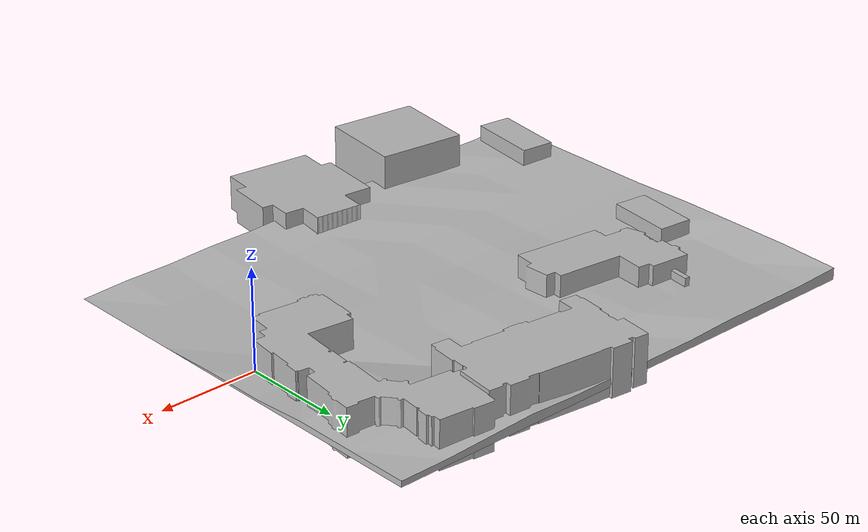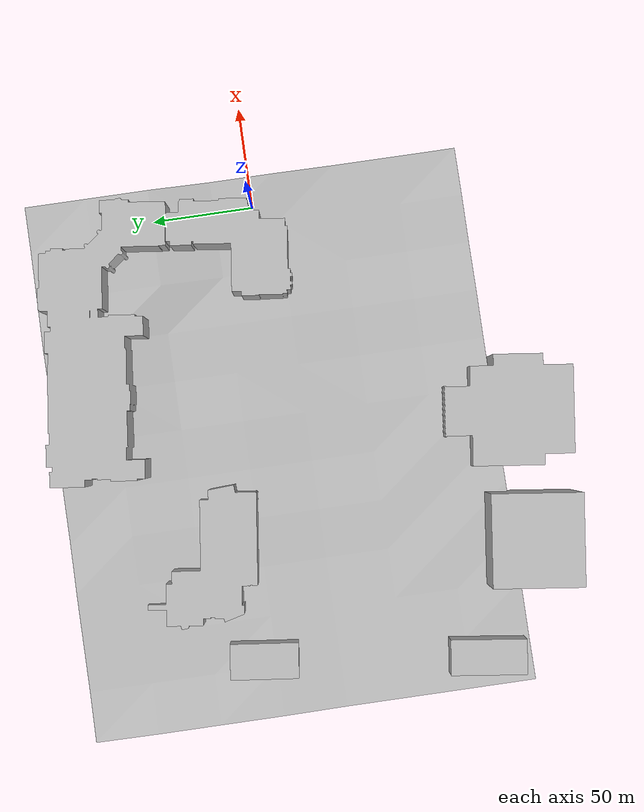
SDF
<?xml version="1.0" ?>
<sdf version="1.6">
  <model name="washu">
    <static>true</static>
    <link name="link">

      <visual name="terrain_visual">
        <geometry>
          <mesh><uri>model://washu/meshes/campus_terrain.obj</uri></mesh>
        </geometry>
      </visual>

      <collision name="terrain_collision">
        <geometry>
          <mesh><uri>model://washu/meshes/campus_terrain.obj</uri></mesh>
        </geometry>
        <surface>
          <friction>
            <ode>
              <mu>1.0</mu>   <mu2>1.0</mu2> </ode>
          </friction>
        </surface>
      </collision>

      <visual name="buildings_visual">
        <geometry>
          <mesh><uri>model://washu/meshes/campus_buildings.obj</uri></mesh>
        </geometry>
      </visual>

      <collision name="buildings_collision">
        <geometry>
          <mesh><uri>model://washu/meshes/campus_buildings.obj</uri></mesh>
        </geometry>
	  </collision>

    </link>
  </model>
</sdf>
